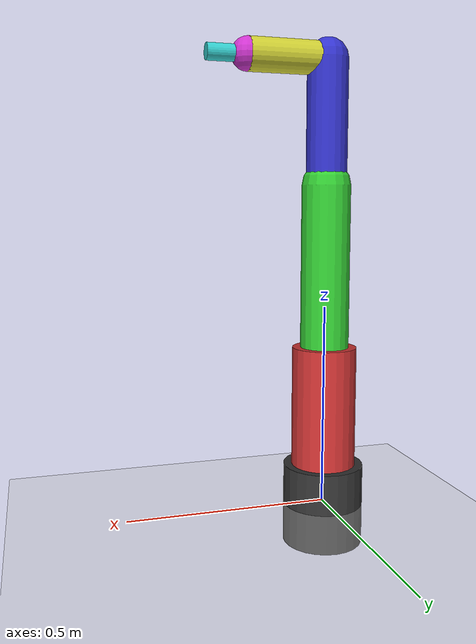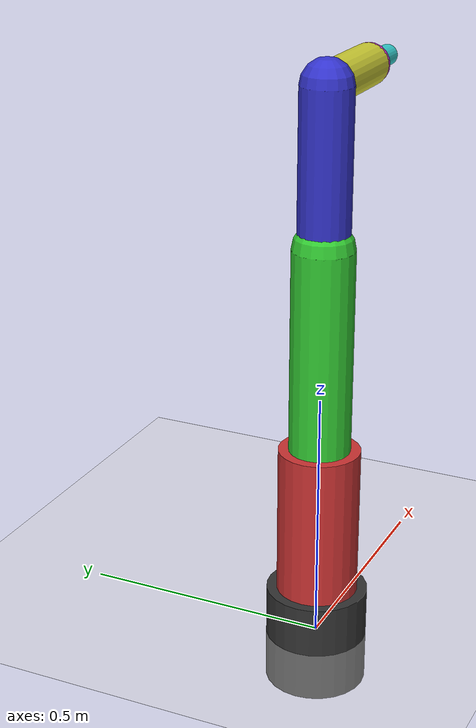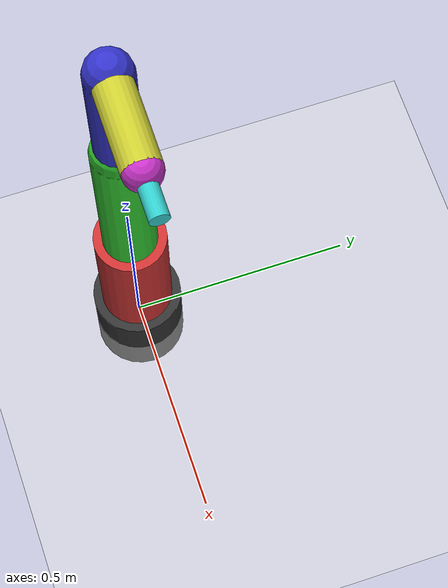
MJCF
# LAB_2 6-AXIS XML FILE

<mujoco model="6_axis_robot">
  <compiler angle="degree"/>
  <option gravity="0 0 -9.81" timestep="0.002"/>

  <default>
    <joint damping="1.5" armature="0.1"/>
  </default>

  <worldbody>
    <geom type="plane" size="5 5 0.1" rgba="0.9 0.9 0.9 1"/>
    <light pos="0 0 3" dir="0 0 -1"/>

    <!-- Base Link -->
    <body name="base" pos="0 0 0">
      <geom type="cylinder" size="0.1 0.1" rgba="0.2 0.2 0.2 1"/>

      <!-- Link 1 (Joint 1: Yaw) -->
      <body name="link1" pos="0 0 0.1">
        <joint name="joint1" axis="0 0 1" range="-180 180"/>
        <geom type="cylinder" size="0.08 0.15" pos="0 0 0.15" rgba="0.8 0.2 0.2 1"/>

        <!-- Link 2 (Joint 2: Pitch) -->
        <body name="link2" pos="0 0 0.3">
          <joint name="joint2" axis="0 1 0" range="-90 90"/>
          <geom type="capsule" size="0.06" fromto="0 0 0 0 0 0.4" rgba="0.2 0.8 0.2 1"/>

          <!-- Link 3 (Joint 3: Pitch) -->
          <body name="link3" pos="0 0 0.4">
            <joint name="joint3" axis="0 1 0" range="-135 135"/>
            <geom type="capsule" size="0.05" fromto="0 0 0 0 0 0.3" rgba="0.2 0.2 0.8 1"/>

            <!-- Link 4 (Joint 4: Roll) -->
            <body name="link4" pos="0 0 0.3">
              <joint name="joint4" axis="1 0 0" range="-180 180"/>
              <geom type="cylinder" size="0.04 0.1" pos="0.1 0 0" quat="0.707 0 0.707 0" rgba="0.8 0.8 0.2 1"/>

              <!-- Link 5 (Joint 5: Pitch) -->
              <body name="link5" pos="0.2 0 0">
                <joint name="joint5" axis="0 1 0" range="-120 120"/>
                <geom type="sphere" size="0.04" rgba="0.8 0.2 0.8 1"/>

                <!-- Link 6 (Joint 6: Roll / End Effector) -->
                <body name="link6" pos="0 0 0">
                  <joint name="joint6" axis="1 0 0" range="-360 360"/>
                  <geom type="cylinder" size="0.02 0.05" pos="0.05 0 0" quat="0.707 0 0.707 0" rgba="0.2 0.8 0.8 1"/>
                </body>
              </body>
            </body>
          </body>
        </body>
      </body>
    </body>
  </worldbody>

  <!-- Stabilized Actuators -->
  <actuator>
    <position name="a_joint1" joint="joint1" kp="200" damping="20"/>
    <position name="a_joint2" joint="joint2" kp="300" damping="30"/>
    <position name="a_joint3" joint="joint3" kp="200" damping="20"/>
    <position name="a_joint4" joint="joint4" kp="100" damping="10"/>
    <position name="a_joint5" joint="joint5" kp="50" damping="5"/>
    <position name="a_joint6" joint="joint6" kp="20" damping="2"/>
  </actuator>
</mujoco>
